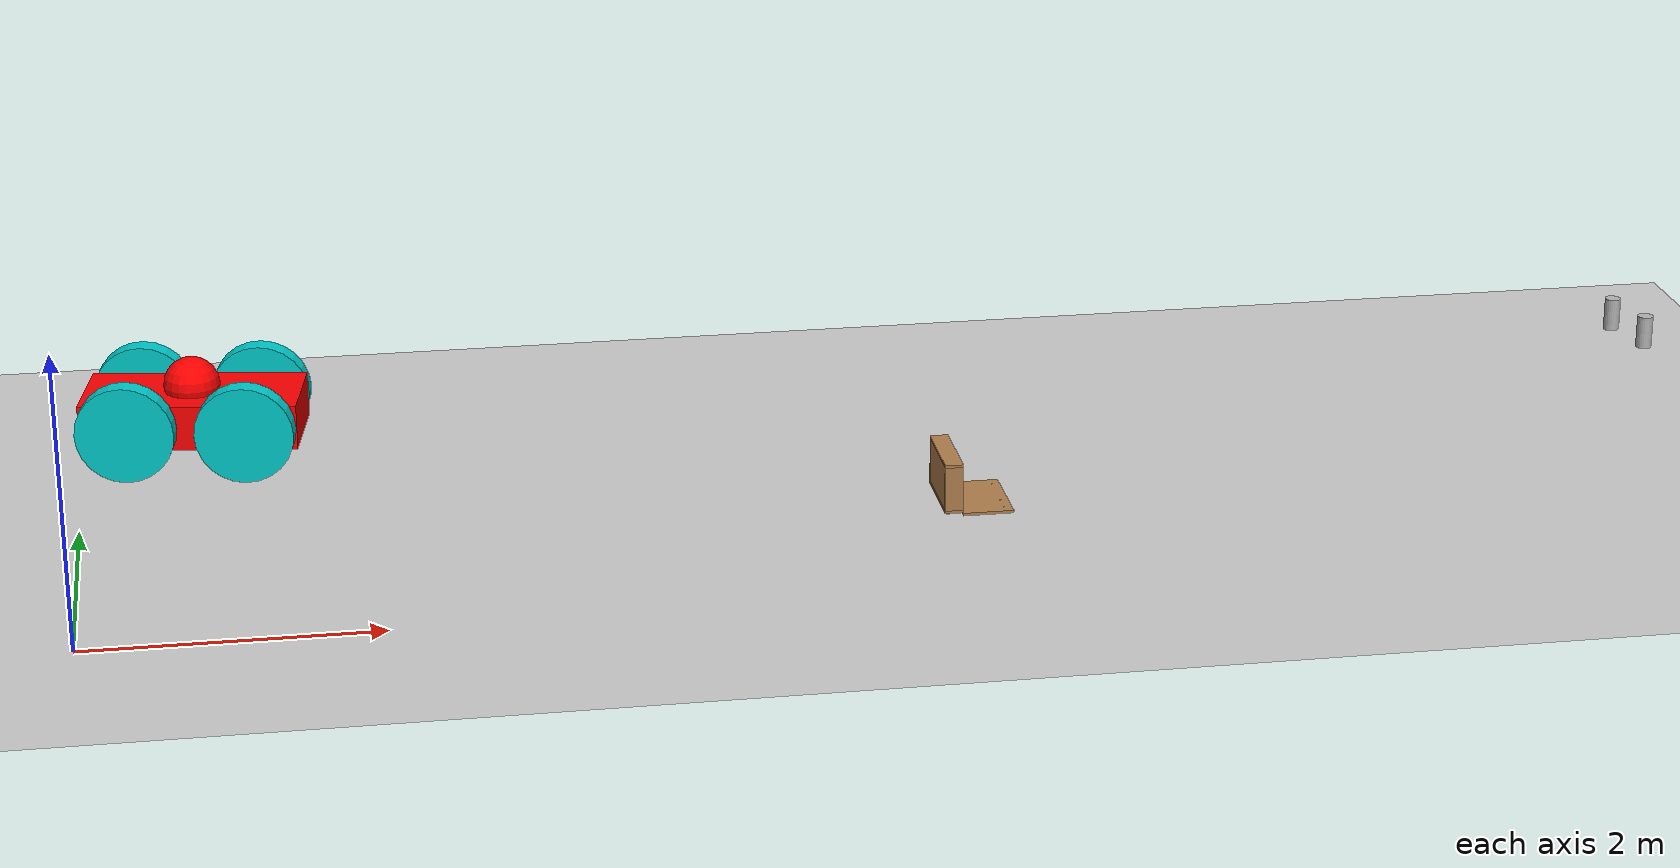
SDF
<sdf version="1.6">
 <world name="default">
  <model name="ground_plane">
   <static>1</static>
   <link name="link">
    <collision name="collision">
     <geometry><plane><normal>0 0 1</normal><size>100 100</size></plane></geometry>
     <surface>
      <contact><collide_bitmask>65535</collide_bitmask></contact>
      <friction><ode><mu>100</mu><mu2>50</mu2></ode></friction>
     </surface>
    </collision>
    <visual name="visual">
     <cast_shadows>0</cast_shadows>
     <geometry><plane><normal>0 0 1</normal><size>100 100</size></plane></geometry>
     <material>
      <script><uri>file://media/materials/scripts/gazebo.material</uri><name>Gazebo/Grey</name></script>
     </material>
    </visual>
   </link>
  </model>
  <model name="beer">
   <link name="link">
    <pose>0 0 0.115 0 -0 0</pose>
    <inertial>
     <mass>0.39</mass>
     <inertia><ixx>0.00058</ixx><ixy>0</ixy><ixz>0</ixz><iyy>0.00058</iyy><iyz>0</iyz><izz>0.00019</izz></inertia>
    </inertial>
    <collision name="collision">
     <geometry><cylinder><radius>0.055</radius><length>0.23</length></cylinder></geometry>
    </collision>
    <visual name="visual">
     <geometry><cylinder><radius>0.055</radius><length>0.23</length></cylinder></geometry>
     <material>
      <script>
       <uri>model://beer/materials/scripts</uri>
       <uri>model://beer/materials/textures</uri>
       <name>Beer/Diffuse</name>
      </script>
     </material>
    </visual>
   </link>
   <pose>10.9309 2.18563 0.774992 -2.8e-05 -5e-06 0.009837</pose>
  </model>
  <model name="beer_clone_0">
   <link name="link">
    <pose>0 0 0.115 0 -0 0</pose>
    <inertial>
     <mass>0.39</mass>
     <inertia><ixx>0.00058</ixx><ixy>0</ixy><ixz>0</ixz><iyy>0.00058</iyy><iyz>0</iyz><izz>0.00019</izz></inertia>
    </inertial>
    <collision name="collision">
     <geometry><cylinder><radius>0.055</radius><length>0.23</length></cylinder></geometry>
    </collision>
    <visual name="visual">
     <geometry><cylinder><radius>0.055</radius><length>0.23</length></cylinder></geometry>
     <material>
      <script>
       <uri>model://beer/materials/scripts</uri>
       <uri>model://beer/materials/textures</uri>
       <name>Beer/Diffuse</name>
      </script>
     </material>
    </visual>
   </link>
   <pose>11.0273 1.78075 0.774992 8e-06 2.6e-05 -0.000403</pose>
  </model>
  <model name="4wheeler_clone">
   <link name="link_0">
    <inertial>
     <mass>1.35085</mass>
     <inertia>
      <ixx>0.277852</ixx>
      <ixy>0</ixy>
      <ixz>0</ixz>
      <iyy>0.0669791</iyy>
      <iyz>0</iyz>
      <izz>0.321192</izz>
     </inertia>
    </inertial>
    <pose>0.011609 -0.00021 0.4 0 -0 0</pose>
    <visual name="visual">
     <geometry><box><size>0.7 1.53729 0.324029</size></box></geometry>
     <material>
      <lighting>1</lighting>
      <script><uri>file://media/materials/scripts/gazebo.material</uri><name>Gazebo/Grey</name></script>
      <shader type="pixel"><normal_map>__default__</normal_map></shader>
      <ambient>1 0 0 1</ambient>
      <diffuse>0.7 0.7 0.7 1</diffuse>
      <specular>0.01 0.01 0.01 1</specular>
      <emissive>0 0 0 1</emissive>
     </material>
    </visual>
    <collision name="collision">
     <geometry><box><size>0.7 1.53729 0.324029</size></box></geometry>
     <surface>
      <friction>
       <ode><mu>1</mu><mu2>1</mu2><fdir1>0 0 0</fdir1><slip1>0</slip1><slip2>0</slip2></ode>
       <torsional>
        <coefficient>1</coefficient>
        <patch_radius>0</patch_radius>
        <surface_radius>0</surface_radius>
        <use_patch_radius>1</use_patch_radius>
        <ode><slip>0</slip></ode>
       </torsional>
      </friction>
      <bounce><restitution_coefficient>0</restitution_coefficient><threshold>1e+06</threshold></bounce>
      <contact>
       <collide_without_contact>0</collide_without_contact>
       <collide_without_contact_bitmask>1</collide_without_contact_bitmask>
       <collide_bitmask>1</collide_bitmask>
       <ode>
        <soft_cfm>0</soft_cfm>
        <soft_erp>0.2</soft_erp>
        <kp>1e+13</kp>
        <kd>1</kd>
        <max_vel>0.01</max_vel>
        <min_depth>0</min_depth>
       </ode>
       <bullet>
        <split_impulse>1</split_impulse>
        <split_impulse_penetration_threshold>-0.01</split_impulse_penetration_threshold>
        <soft_cfm>0</soft_cfm>
        <soft_erp>0.2</soft_erp>
        <kp>1e+13</kp>
        <kd>1</kd>
       </bullet>
      </contact>
     </surface>
    </collision>
   </link>
   <link name="link_1_clone">
    <inertial>
     <mass>1</mass>
     <inertia><ixx>0.145833</ixx><ixy>0</ixy><ixz>0</ixz><iyy>0.145833</iyy><iyz>0</iyz><izz>0.125</izz></inertia>
    </inertial>
    <pose>0.44037 0.416058 0.4 1.5707 0 1.5707</pose>
    <visual name="visual">
     <geometry><cylinder><radius>0.35</radius><length>0.15</length></cylinder></geometry>
     <material>
      <lighting>1</lighting>
      <script><uri>file://media/materials/scripts/gazebo.material</uri><name>Gazebo/Grey</name></script>
      <shader type="pixel"><normal_map>__default__</normal_map></shader>
      <ambient>0 0.8 0.8 1</ambient>
      <diffuse>0.7 0.7 0.7 1</diffuse>
      <specular>0.01 0.01 0.01 1</specular>
      <emissive>0 0 0 1</emissive>
     </material>
    </visual>
    <collision name="collision">
     <geometry><cylinder><radius>0.35</radius><length>0.15</length></cylinder></geometry>
     <surface>
      <friction>
       <ode><mu>1</mu><mu2>1</mu2><fdir1>0 0 0</fdir1><slip1>0</slip1><slip2>0</slip2></ode>
       <torsional>
        <coefficient>1</coefficient>
        <patch_radius>0</patch_radius>
        <surface_radius>0</surface_radius>
        <use_patch_radius>1</use_patch_radius>
        <ode><slip>0</slip></ode>
       </torsional>
      </friction>
      <bounce><restitution_coefficient>0</restitution_coefficient><threshold>1e+06</threshold></bounce>
      <contact>
       <collide_without_contact>0</collide_without_contact>
       <collide_without_contact_bitmask>1</collide_without_contact_bitmask>
       <collide_bitmask>1</collide_bitmask>
       <ode>
        <soft_cfm>0</soft_cfm>
        <soft_erp>0.2</soft_erp>
        <kp>1e+13</kp>
        <kd>1</kd>
        <max_vel>0.01</max_vel>
        <min_depth>0</min_depth>
       </ode>
       <bullet>
        <split_impulse>1</split_impulse>
        <split_impulse_penetration_threshold>-0.01</split_impulse_penetration_threshold>
        <soft_cfm>0</soft_cfm>
        <soft_erp>0.2</soft_erp>
        <kp>1e+13</kp>
        <kd>1</kd>
       </bullet>
      </contact>
     </surface>
    </collision>
   </link>
   <link name="link_1_clone_clone">
    <inertial>
     <mass>1</mass>
     <inertia><ixx>0.145833</ixx><ixy>0</ixy><ixz>0</ixz><iyy>0.145833</iyy><iyz>0</iyz><izz>0.125</izz></inertia>
    </inertial>
    <pose>0.431165 -0.424592 0.4 1.5707 0 1.5707</pose>
    <visual name="visual">
     <geometry><cylinder><radius>0.35</radius><length>0.15</length></cylinder></geometry>
     <material>
      <lighting>1</lighting>
      <script><uri>file://media/materials/scripts/gazebo.material</uri><name>Gazebo/Grey</name></script>
      <shader type="pixel"><normal_map>__default__</normal_map></shader>
      <ambient>0 0.8 0.8 1</ambient>
      <diffuse>0.7 0.7 0.7 1</diffuse>
      <specular>0.01 0.01 0.01 1</specular>
      <emissive>0 0 0 1</emissive>
     </material>
    </visual>
    <collision name="collision">
     <geometry><cylinder><radius>0.35</radius><length>0.15</length></cylinder></geometry>
     <surface>
      <friction>
       <ode><mu>1</mu><mu2>1</mu2><fdir1>0 0 0</fdir1><slip1>0</slip1><slip2>0</slip2></ode>
       <torsional>
        <coefficient>1</coefficient>
        <patch_radius>0</patch_radius>
        <surface_radius>0</surface_radius>
        <use_patch_radius>1</use_patch_radius>
        <ode><slip>0</slip></ode>
       </torsional>
      </friction>
      <bounce><restitution_coefficient>0</restitution_coefficient><threshold>1e+06</threshold></bounce>
      <contact>
       <collide_without_contact>0</collide_without_contact>
       <collide_without_contact_bitmask>1</collide_without_contact_bitmask>
       <collide_bitmask>1</collide_bitmask>
       <ode>
        <soft_cfm>0</soft_cfm>
        <soft_erp>0.2</soft_erp>
        <kp>1e+13</kp>
        <kd>1</kd>
        <max_vel>0.01</max_vel>
        <min_depth>0</min_depth>
       </ode>
       <bullet>
        <split_impulse>1</split_impulse>
        <split_impulse_penetration_threshold>-0.01</split_impulse_penetration_threshold>
        <soft_cfm>0</soft_cfm>
        <soft_erp>0.2</soft_erp>
        <kp>1e+13</kp>
        <kd>1</kd>
       </bullet>
      </contact>
     </surface>
    </collision>
   </link>
   <link name="link_1_clone_clone_0">
    <inertial>
     <mass>1</mass>
     <inertia><ixx>0.145833</ixx><ixy>0</ixy><ixz>0</ixz><iyy>0.145833</iyy><iyz>0</iyz><izz>0.125</izz></inertia>
    </inertial>
    <pose>-0.421453 0.42237 0.4 1.5707 0 1.5707</pose>
    <visual name="visual">
     <geometry><cylinder><radius>0.35</radius><length>0.15</length></cylinder></geometry>
     <material>
      <lighting>1</lighting>
      <script><uri>file://media/materials/scripts/gazebo.material</uri><name>Gazebo/Grey</name></script>
      <shader type="pixel"><normal_map>__default__</normal_map></shader>
      <ambient>0 0.8 0.8 1</ambient>
      <diffuse>0.7 0.7 0.7 1</diffuse>
      <specular>0.01 0.01 0.01 1</specular>
      <emissive>0 0 0 1</emissive>
     </material>
    </visual>
    <collision name="collision">
     <geometry><cylinder><radius>0.35</radius><length>0.15</length></cylinder></geometry>
     <surface>
      <friction>
       <ode><mu>1</mu><mu2>1</mu2><fdir1>0 0 0</fdir1><slip1>0</slip1><slip2>0</slip2></ode>
       <torsional>
        <coefficient>1</coefficient>
        <patch_radius>0</patch_radius>
        <surface_radius>0</surface_radius>
        <use_patch_radius>1</use_patch_radius>
        <ode><slip>0</slip></ode>
       </torsional>
      </friction>
      <bounce><restitution_coefficient>0</restitution_coefficient><threshold>1e+06</threshold></bounce>
      <contact>
       <collide_without_contact>0</collide_without_contact>
       <collide_without_contact_bitmask>1</collide_without_contact_bitmask>
       <collide_bitmask>1</collide_bitmask>
       <ode>
        <soft_cfm>0</soft_cfm>
        <soft_erp>0.2</soft_erp>
        <kp>1e+13</kp>
        <kd>1</kd>
        <max_vel>0.01</max_vel>
        <min_depth>0</min_depth>
       </ode>
       <bullet>
        <split_impulse>1</split_impulse>
        <split_impulse_penetration_threshold>-0.01</split_impulse_penetration_threshold>
        <soft_cfm>0</soft_cfm>
        <soft_erp>0.2</soft_erp>
        <kp>1e+13</kp>
        <kd>1</kd>
       </bullet>
      </contact>
     </surface>
    </collision>
   </link>
   <link name="link_1_clone_clone_clone">
    <inertial>
     <mass>1</mass>
     <inertia><ixx>0.145833</ixx><ixy>0</ixy><ixz>0</ixz><iyy>0.145833</iyy><iyz>0</iyz><izz>0.125</izz></inertia>
    </inertial>
    <pose>-0.415948 -0.421035 0.4 1.5707 0 1.5707</pose>
    <visual name="visual">
     <geometry><cylinder><radius>0.35</radius><length>0.15</length></cylinder></geometry>
     <material>
      <lighting>1</lighting>
      <script><uri>file://media/materials/scripts/gazebo.material</uri><name>Gazebo/Grey</name></script>
      <shader type="pixel"><normal_map>__default__</normal_map></shader>
      <ambient>0 0.8 0.8 1</ambient>
      <diffuse>0.7 0.7 0.7 1</diffuse>
      <specular>0.01 0.01 0.01 1</specular>
      <emissive>0 0 0 1</emissive>
     </material>
    </visual>
    <collision name="collision">
     <geometry><cylinder><radius>0.35</radius><length>0.15</length></cylinder></geometry>
     <surface>
      <friction>
       <ode><mu>1</mu><mu2>1</mu2><fdir1>0 0 0</fdir1><slip1>0</slip1><slip2>0</slip2></ode>
       <torsional>
        <coefficient>1</coefficient>
        <patch_radius>0</patch_radius>
        <surface_radius>0</surface_radius>
        <use_patch_radius>1</use_patch_radius>
        <ode><slip>0</slip></ode>
       </torsional>
      </friction>
      <bounce><restitution_coefficient>0</restitution_coefficient><threshold>1e+06</threshold></bounce>
      <contact>
       <collide_without_contact>0</collide_without_contact>
       <collide_without_contact_bitmask>1</collide_without_contact_bitmask>
       <collide_bitmask>1</collide_bitmask>
       <ode>
        <soft_cfm>0</soft_cfm>
        <soft_erp>0.2</soft_erp>
        <kp>1e+13</kp>
        <kd>1</kd>
        <max_vel>0.01</max_vel>
        <min_depth>0</min_depth>
       </ode>
       <bullet>
        <split_impulse>1</split_impulse>
        <split_impulse_penetration_threshold>-0.01</split_impulse_penetration_threshold>
        <soft_cfm>0</soft_cfm>
        <soft_erp>0.2</soft_erp>
        <kp>1e+13</kp>
        <kd>1</kd>
       </bullet>
      </contact>
     </surface>
    </collision>
   </link>
   <link name="link_5">
    <inertial>
     <mass>1</mass>
     <inertia><ixx>0.1</ixx><ixy>0</ixy><ixz>0</ixz><iyy>0.1</iyy><iyz>0</iyz><izz>0.1</izz></inertia>
    </inertial>
    <pose>-0.001788 -0.009431 0.6 0 -0 0</pose>
    <visual name="visual">
     <geometry><sphere><radius>0.2</radius></sphere></geometry>
     <material>
      <lighting>1</lighting>
      <script><uri>file://media/materials/scripts/gazebo.material</uri><name>Gazebo/Grey</name></script>
      <shader type="pixel"><normal_map>__default__</normal_map></shader>
      <ambient>1 0 0 1</ambient>
      <diffuse>0.7 0.7 0.7 1</diffuse>
      <specular>0.01 0.01 0.01 1</specular>
      <emissive>0 0 0 1</emissive>
     </material>
    </visual>
    <collision name="collision">
     <geometry><sphere><radius>0.2</radius></sphere></geometry>
     <surface>
      <friction>
       <ode><mu>1</mu><mu2>1</mu2><fdir1>0 0 0</fdir1><slip1>0</slip1><slip2>0</slip2></ode>
       <torsional>
        <coefficient>1</coefficient>
        <patch_radius>0</patch_radius>
        <surface_radius>0</surface_radius>
        <use_patch_radius>1</use_patch_radius>
        <ode><slip>0</slip></ode>
       </torsional>
      </friction>
      <bounce><restitution_coefficient>0</restitution_coefficient><threshold>1e+06</threshold></bounce>
      <contact>
       <collide_without_contact>0</collide_without_contact>
       <collide_without_contact_bitmask>1</collide_without_contact_bitmask>
       <collide_bitmask>1</collide_bitmask>
       <ode>
        <soft_cfm>0</soft_cfm>
        <soft_erp>0.2</soft_erp>
        <kp>1e+13</kp>
        <kd>1</kd>
        <max_vel>0.01</max_vel>
        <min_depth>0</min_depth>
       </ode>
       <bullet>
        <split_impulse>1</split_impulse>
        <split_impulse_penetration_threshold>-0.01</split_impulse_penetration_threshold>
        <soft_cfm>0</soft_cfm>
        <soft_erp>0.2</soft_erp>
        <kp>1e+13</kp>
        <kd>1</kd>
       </bullet>
      </contact>
     </surface>
    </collision>
   </link>
   <joint name="link_0_JOINT_0" type="revolute">
    <parent>link_0</parent>
    <child>link_1_clone</child>
    <axis>
     <xyz>0 0 1</xyz>
     <use_parent_model_frame>0</use_parent_model_frame>
     <limit>
      <lower>-1.79769e+308</lower>
      <upper>1.79769e+308</upper>
      <effort>-1</effort>
      <velocity>-1</velocity>
     </limit>
     <dynamics>
      <spring_reference>0</spring_reference>
      <spring_stiffness>0</spring_stiffness>
      <damping>0</damping>
      <friction>0</friction>
     </dynamics>
    </axis>
    <physics>
     <ode><limit><cfm>0</cfm><erp>0.2</erp></limit><suspension><cfm>0</cfm><erp>0.2</erp></suspension></ode>
    </physics>
   </joint>
   <joint name="link_0_JOINT_1" type="revolute">
    <parent>link_0</parent>
    <child>link_1_clone_clone</child>
    <axis>
     <xyz>0 0 1</xyz>
     <use_parent_model_frame>0</use_parent_model_frame>
     <limit>
      <lower>-1.79769e+308</lower>
      <upper>1.79769e+308</upper>
      <effort>-1</effort>
      <velocity>-1</velocity>
     </limit>
     <dynamics>
      <spring_reference>0</spring_reference>
      <spring_stiffness>0</spring_stiffness>
      <damping>0</damping>
      <friction>0</friction>
     </dynamics>
    </axis>
    <physics>
     <ode><limit><cfm>0</cfm><erp>0.2</erp></limit><suspension><cfm>0</cfm><erp>0.2</erp></suspension></ode>
    </physics>
   </joint>
   <joint name="link_0_JOINT_2" type="revolute">
    <parent>link_0</parent>
    <child>link_1_clone_clone_clone</child>
    <axis>
     <xyz>0 0 1</xyz>
     <use_parent_model_frame>0</use_parent_model_frame>
     <limit>
      <lower>-1.79769e+308</lower>
      <upper>1.79769e+308</upper>
      <effort>-1</effort>
      <velocity>-1</velocity>
     </limit>
     <dynamics>
      <spring_reference>0</spring_reference>
      <spring_stiffness>0</spring_stiffness>
      <damping>0</damping>
      <friction>0</friction>
     </dynamics>
    </axis>
    <physics>
     <ode><limit><cfm>0</cfm><erp>0.2</erp></limit><suspension><cfm>0</cfm><erp>0.2</erp></suspension></ode>
    </physics>
   </joint>
   <joint name="link_0_JOINT_3" type="revolute">
    <parent>link_0</parent>
    <child>link_1_clone_clone_0</child>
    <axis>
     <xyz>1 0 0</xyz>
     <use_parent_model_frame>0</use_parent_model_frame>
     <limit>
      <lower>-1.79769e+308</lower>
      <upper>1.79769e+308</upper>
      <effort>-1</effort>
      <velocity>-1</velocity>
     </limit>
     <dynamics>
      <spring_reference>0</spring_reference>
      <spring_stiffness>0</spring_stiffness>
      <damping>0</damping>
      <friction>0</friction>
     </dynamics>
    </axis>
    <physics>
     <ode><limit><cfm>0</cfm><erp>0.2</erp></limit><suspension><cfm>0</cfm><erp>0.2</erp></suspension></ode>
    </physics>
   </joint>
   <joint name="link_0_JOINT_4" type="fixed">
    <parent>link_0</parent>
    <child>link_5</child>
    <physics>
     <ode><limit><cfm>0</cfm><erp>0.2</erp></limit><suspension><cfm>0</cfm><erp>0.2</erp></suspension></ode>
    </physics>
   </joint>
   <static>0</static>
   <pose>0.807389 3.31087 -0.049993 0 -4e-06 -1.7227</pose>
  </model>
  <model name="wooden_case">
   <link name="base">
    <pose>0 0 0.024 0 -0 0</pose>
    <inertial>
     <pose>-0.022184 0 0.171592 0 -0 0</pose>
     <mass>3.96264</mass>
     <inertia>
      <ixx>0.213536</ixx>
      <ixy>0</ixy>
      <ixz>0.000779377</ixz>
      <iyy>0.0708943</iyy>
      <iyz>0</iyz>
      <izz>0.154604</izz>
     </inertia>
    </inertial>
    <collision name="collision_back">
     <pose>-0.053975 0 0.1778 0 -0 0</pose>
     <geometry><box><size>0.01905 0.5461 0.3175</size></box></geometry>
     <surface>
      <contact>
       <poissons_ratio>0.347</poissons_ratio>
       <elastic_modulus>8.8e+09</elastic_modulus>
       <ode><kp>100000</kp><kd>100</kd><max_vel>100</max_vel><min_depth>0.001</min_depth></ode>
      </contact>
      <friction>
       <torsional>
        <coefficient>1</coefficient>
        <use_patch_radius>0</use_patch_radius>
        <surface_radius>0.01</surface_radius>
       </torsional>
      </friction>
     </surface>
    </collision>
    <visual name="visual_back">
     <pose>-0.053975 0 0.1778 0 -0 0</pose>
     <geometry><box><size>0.01905 0.5461 0.3175</size></box></geometry>
     <material>
      <script><uri>file://media/materials/scripts/gazebo.material</uri><name>Gazebo/Wood</name></script>
     </material>
    </visual>
    <collision name="collision_bottom">
     <pose>0 0 0.009525 0 -0 0</pose>
     <geometry><box><size>0.127 0.5842 0.01905</size></box></geometry>
     <surface>
      <contact>
       <poissons_ratio>0.347</poissons_ratio>
       <elastic_modulus>8.8e+09</elastic_modulus>
       <ode><kp>100000</kp><kd>100</kd><max_vel>100</max_vel><min_depth>0.001</min_depth></ode>
      </contact>
      <friction>
       <torsional>
        <coefficient>1</coefficient>
        <use_patch_radius>0</use_patch_radius>
        <surface_radius>0.01</surface_radius>
       </torsional>
      </friction>
     </surface>
    </collision>
    <visual name="visual_bottom">
     <pose>0 0 0.009525 0 -0 0</pose>
     <geometry><box><size>0.127 0.5842 0.01905</size></box></geometry>
     <material>
      <script><uri>file://media/materials/scripts/gazebo.material</uri><name>Gazebo/Wood</name></script>
     </material>
    </visual>
    <collision name="collision_top">
     <pose>0 0 0.346075 0 -0 0</pose>
     <geometry><box><size>0.127 0.5842 0.01905</size></box></geometry>
     <surface>
      <contact>
       <poissons_ratio>0.347</poissons_ratio>
       <elastic_modulus>8.8e+09</elastic_modulus>
       <ode><kp>100000</kp><kd>100</kd><max_vel>100</max_vel><min_depth>0.001</min_depth></ode>
      </contact>
      <friction>
       <torsional>
        <coefficient>1</coefficient>
        <use_patch_radius>0</use_patch_radius>
        <surface_radius>0.01</surface_radius>
       </torsional>
      </friction>
     </surface>
    </collision>
    <visual name="visual_top">
     <pose>0 0 0.346075 0 -0 0</pose>
     <geometry><box><size>0.127 0.5842 0.01905</size></box></geometry>
     <material>
      <script><uri>file://media/materials/scripts/gazebo.material</uri><name>Gazebo/Wood</name></script>
     </material>
    </visual>
    <collision name="collision_left">
     <pose>0 -0.282575 0.1778 0 -0 0</pose>
     <geometry><box><size>0.127 0.01905 0.3175</size></box></geometry>
     <surface>
      <contact>
       <poissons_ratio>0.347</poissons_ratio>
       <elastic_modulus>8.8e+09</elastic_modulus>
       <ode><kp>100000</kp><kd>100</kd><max_vel>100</max_vel><min_depth>0.001</min_depth></ode>
      </contact>
      <friction>
       <torsional>
        <coefficient>1</coefficient>
        <use_patch_radius>0</use_patch_radius>
        <surface_radius>0.01</surface_radius>
       </torsional>
      </friction>
     </surface>
    </collision>
    <visual name="visual_left">
     <pose>0 -0.282575 0.1778 0 -0 0</pose>
     <geometry><box><size>0.127 0.01905 0.3175</size></box></geometry>
     <material>
      <script><uri>file://media/materials/scripts/gazebo.material</uri><name>Gazebo/Wood</name></script>
     </material>
    </visual>
    <collision name="collision_right">
     <pose>0 0.282575 0.1778 0 -0 0</pose>
     <geometry><box><size>0.127 0.01905 0.3175</size></box></geometry>
     <surface>
      <contact>
       <poissons_ratio>0.347</poissons_ratio>
       <elastic_modulus>8.8e+09</elastic_modulus>
       <ode><kp>100000</kp><kd>100</kd><max_vel>100</max_vel><min_depth>0.001</min_depth></ode>
      </contact>
      <friction>
       <torsional>
        <coefficient>1</coefficient>
        <use_patch_radius>0</use_patch_radius>
        <surface_radius>0.01</surface_radius>
       </torsional>
      </friction>
     </surface>
    </collision>
    <visual name="visual_right">
     <pose>0 0.282575 0.1778 0 -0 0</pose>
     <geometry><box><size>0.127 0.01905 0.3175</size></box></geometry>
     <material>
      <script><uri>file://media/materials/scripts/gazebo.material</uri><name>Gazebo/Wood</name></script>
     </material>
    </visual>
    <collision name="collision_block_left">
     <pose>0.0095 -0.2151 -0.012 0 -0 0</pose>
     <geometry><box><size>0.108 0.05 0.024</size></box></geometry>
     <surface>
      <contact>
       <poissons_ratio>0.347</poissons_ratio>
       <elastic_modulus>8.8e+09</elastic_modulus>
       <ode><kp>100000</kp><kd>100</kd><max_vel>100</max_vel><min_depth>0.001</min_depth></ode>
      </contact>
      <friction>
       <torsional>
        <coefficient>1</coefficient>
        <use_patch_radius>0</use_patch_radius>
        <surface_radius>0.01</surface_radius>
       </torsional>
      </friction>
     </surface>
    </collision>
    <visual name="visual_block_left">
     <pose>0.0095 -0.2151 -0.012 0 -0 0</pose>
     <geometry><box><size>0.108 0.05 0.024</size></box></geometry>
     <material>
      <script><uri>file://media/materials/scripts/gazebo.material</uri><name>Gazebo/Wood</name></script>
     </material>
    </visual>
    <collision name="collision_block_right">
     <pose>0.0095 0.2151 -0.012 0 -0 0</pose>
     <geometry><box><size>0.108 0.05 0.024</size></box></geometry>
     <surface>
      <contact>
       <poissons_ratio>0.347</poissons_ratio>
       <elastic_modulus>8.8e+09</elastic_modulus>
       <ode><kp>100000</kp><kd>100</kd><max_vel>100</max_vel><min_depth>0.001</min_depth></ode>
      </contact>
      <friction>
       <torsional>
        <coefficient>1</coefficient>
        <use_patch_radius>0</use_patch_radius>
        <surface_radius>0.01</surface_radius>
       </torsional>
      </friction>
     </surface>
    </collision>
    <visual name="visual_block_right">
     <pose>0.0095 0.2151 -0.012 0 -0 0</pose>
     <geometry><box><size>0.108 0.05 0.024</size></box></geometry>
     <material>
      <script><uri>file://media/materials/scripts/gazebo.material</uri><name>Gazebo/Wood</name></script>
     </material>
    </visual>
   </link>
   <link name="lid">
    <pose>0.243775 0 0.009525 0 -0 0</pose>
    <inertial>
     <mass>1.97874</mass>
     <inertia>
      <ixx>0.0563367</ixx>
      <ixy>0</ixy>
      <ixz>0</ixz>
      <iyy>0.020911</iyy>
      <iyz>0</iyz>
      <izz>0.0771281</izz>
     </inertia>
    </inertial>
    <collision name="collision">
     <geometry><box><size>0.3556 0.5842 0.01905</size></box></geometry>
     <surface>
      <contact>
       <poissons_ratio>0.347</poissons_ratio>
       <elastic_modulus>8.8e+09</elastic_modulus>
       <ode><kp>100000</kp><kd>100</kd><max_vel>100</max_vel><min_depth>0.001</min_depth></ode>
      </contact>
      <friction>
       <torsional>
        <coefficient>1</coefficient>
        <use_patch_radius>0</use_patch_radius>
        <surface_radius>0.01</surface_radius>
       </torsional>
      </friction>
     </surface>
    </collision>
    <visual name="visual">
     <geometry><box><size>0.3556 0.5842 0.01905</size></box></geometry>
     <material>
      <script><uri>file://media/materials/scripts/gazebo.material</uri><name>Gazebo/Wood</name></script>
     </material>
    </visual>
    <visual name="tee_nut_1">
     <pose>0.122 -0.216 0 0 -0 0</pose>
     <geometry><cylinder><radius>0.00635</radius><length>0.0192405</length></cylinder></geometry>
     <material>
      <script><uri>file://media/materials/scripts/gazebo.material</uri><name>Gazebo/Grey</name></script>
     </material>
    </visual>
    <visual name="tee_nut_2">
     <pose>0.122 -0.088 0 0 -0 0</pose>
     <geometry><cylinder><radius>0.00635</radius><length>0.0192405</length></cylinder></geometry>
     <material>
      <script><uri>file://media/materials/scripts/gazebo.material</uri><name>Gazebo/Grey</name></script>
     </material>
    </visual>
    <visual name="tee_nut_3">
     <pose>0.122 0.088 0 0 -0 0</pose>
     <geometry><cylinder><radius>0.00635</radius><length>0.0192405</length></cylinder></geometry>
     <material>
      <script><uri>file://media/materials/scripts/gazebo.material</uri><name>Gazebo/Grey</name></script>
     </material>
    </visual>
    <visual name="tee_nut_4">
     <pose>0.122 0.216 0 0 -0 0</pose>
     <geometry><cylinder><radius>0.00635</radius><length>0.0192405</length></cylinder></geometry>
     <material>
      <script><uri>file://media/materials/scripts/gazebo.material</uri><name>Gazebo/Grey</name></script>
     </material>
    </visual>
   </link>
   <joint name="lid_hinge" type="revolute">
    <pose>-0.1778 0 0.01905 0 -0 0</pose>
    <parent>base</parent>
    <child>lid</child>
    <axis>
     <xyz>0 1 0</xyz>
     <limit><upper>0.523599</upper><lower>-1.5708</lower></limit>
     <use_parent_model_frame>0</use_parent_model_frame>
     <dynamics><spring_reference>0</spring_reference><spring_stiffness>0</spring_stiffness></dynamics>
    </axis>
   </joint>
   <pose>5.94062 1.59499 -0.001057 0 -0.000427 0</pose>
  </model>
 </world>
</sdf>
